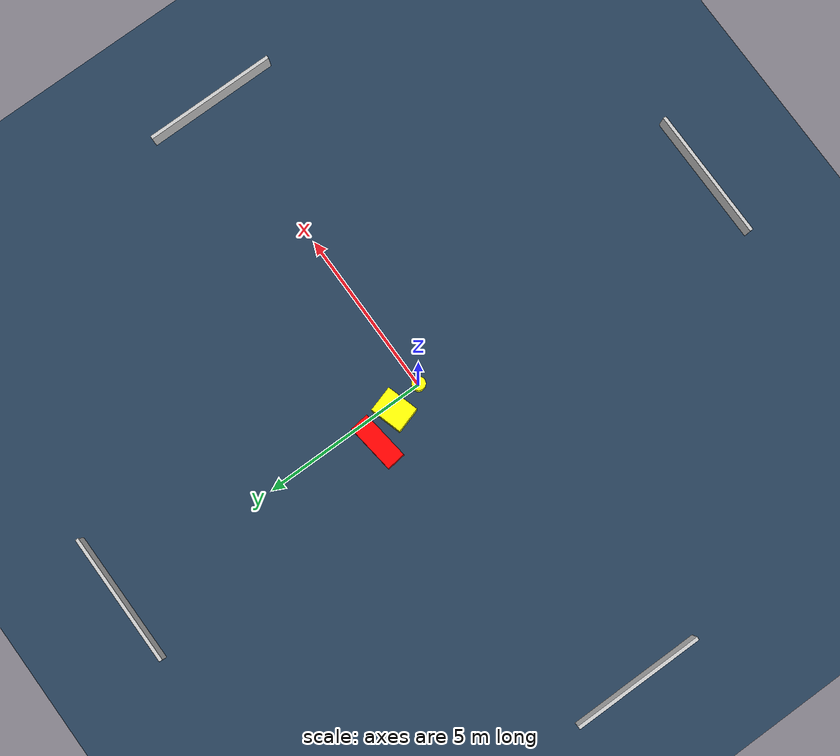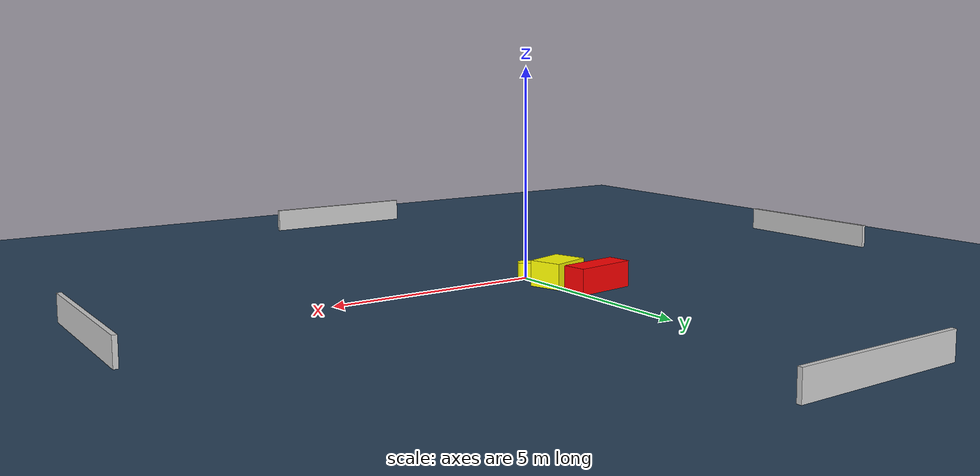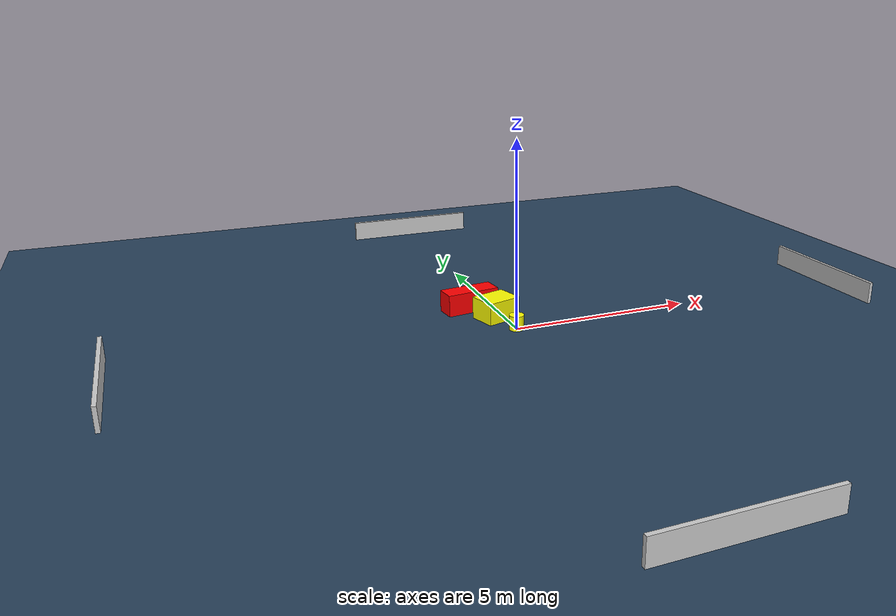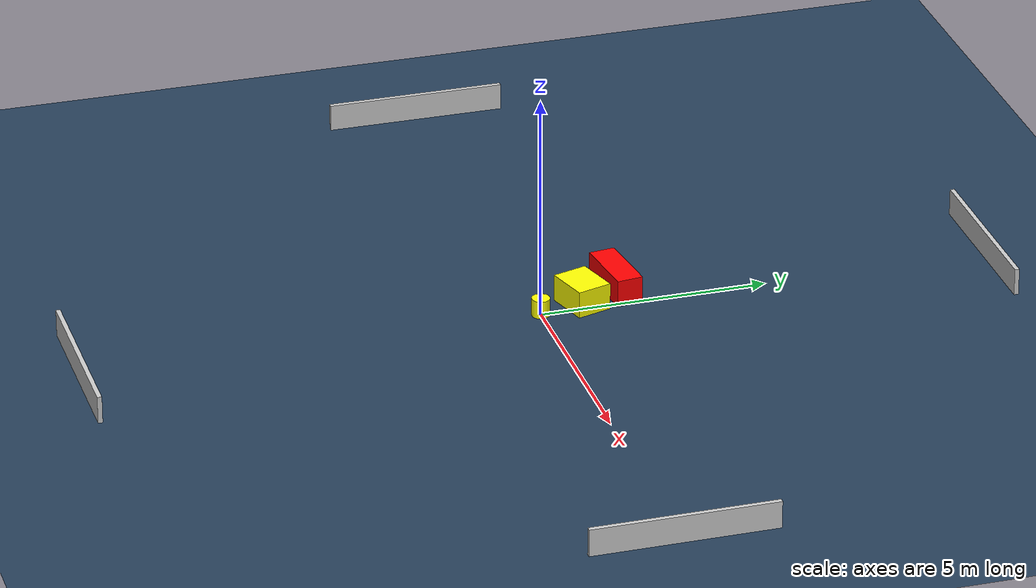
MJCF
<?xml version="1.0" ?>
<mujoco model="generated_environment">
  <option timestep="0.01" integrator="RK4" cone="elliptic"/>
  <default>
    <geom density="1"/>
  </default>
  <asset>
    <texture builtin="gradient" height="3072" name="skybox" rgb1="0.3 0.5 0.7" rgb2="0 0 0" type="skybox" width="512"/>
    <texture builtin="checker" height="300" name="groundplane" rgb1="0.2 0.3 0.4" rgb2="0.1 0.2 0.3" type="2d" width="300"/>
    <material name="groundplane" reflectance="0.2" texrepeat="5 5" texture="groundplane"/>
  </asset>
  <worldbody>
    <light dir="0 0 -1" directional="true" pos="0 0 1.5"/>
    <geom condim="3" friction="0.5 0.005 0.001" material="groundplane" name="floor" pos="0 0 0" size="0 0 0.05" type="plane"/>
    <body name="walls">
      <geom name="wall_1" condim="4" pos="-10.0 0.0 0.3" rgba="0.800000011920929 0.800000011920929 0.800000011920929 1.0" size="0.05 2.0 0.3" type="box"/>
      <geom name="wall_2" condim="4" pos="10.0 0.0 0.3" rgba="0.800000011920929 0.800000011920929 0.800000011920929 1.0" size="0.05 2.0 0.3" type="box"/>
      <geom name="wall_3" condim="4" pos="0.0 -10.0 0.3" rgba="0.800000011920929 0.800000011920929 0.800000011920929 1.0" size="2.0 0.05 0.3" type="box"/>
      <geom name="wall_4" condim="4" pos="0.0 10.0 0.3" rgba="0.800000011920929 0.800000011920929 0.800000011920929 1.0" size="2.0 0.05 0.3" type="box"/>
    </body>
    <body name="robot">
      <joint name="joint_x" type="slide" pos="0 0 0" axis="1 0 0"/>
      <joint name="joint_y" type="slide" pos="0 0 0" axis="0 1 0"/>
      <geom name="robot" type="cylinder" pos="0.0 0.0 0.2" size="0.2 0.2 0.0" mass="5.0" friction="1.0 0.005 0.0001" condim="4" rgba="1.0 1.0 0.0 1.0"/>
    </body>
    <body name="obstacle_1_movable">
      <geom name="obstacle_1_movable" condim="4" pos="-0.20035947733612894 0.9753303133149993 0.3" euler="0 0 286.52708183526875" friction="0.0 0.005 0.001" rgba="1.0 1.0 0.0 1.0" size="0.3926682500126436 0.4896471148566939 0.3" type="box" mass="0.1"/>
      <joint type="free"/>
    </body>
    <body name="obstacle_2_static">
      <geom name="obstacle_2_static" condim="4" pos="-0.6511318236284137 1.8650437500073611 0.3" euler="0 0 187.05775353228069" friction="0.0 0.005 0.001" rgba="1.0 0.0 0.0 1.0" size="0.7433979650263476 0.28795672011501233 0.3" type="box"/>
    </body>
  </worldbody>
  <actuator>
    <motor name="actuator_x" joint="joint_x" gear="1" ctrlrange="-1 1"/>
    <motor name="actuator_y" joint="joint_y" gear="1" ctrlrange="-1 1"/>
  </actuator>
</mujoco>
